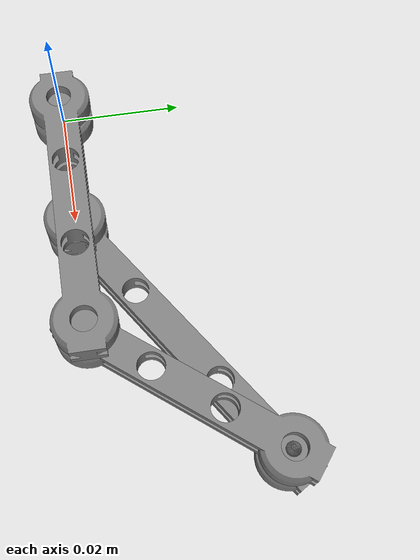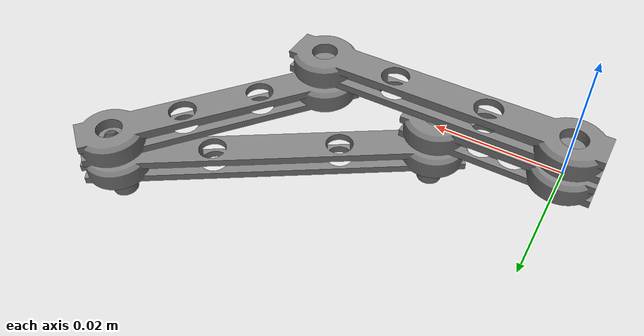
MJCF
<?xml version='1.0' encoding='utf-8'?>
<mujoco model="four_bar_linkage">
  <compiler angle="radian" coordinate="local" />
  <option gravity="0 0 -9.81" />
  <asset>
    <mesh name="mesh_coupler" file="four_bar_linkage_meshes/mesh_coupler.obj" scale="0.001 0.001 0.001" />
    <mesh name="mesh_crank" file="four_bar_linkage_meshes/mesh_crank.obj" scale="0.001 0.001 0.001" />
    <mesh name="mesh_ground_pivot_bolt" file="four_bar_linkage_meshes/mesh_ground_pivot_bolt.obj" scale="0.001 0.001 0.001" />
    <mesh name="mesh_ground_span" file="four_bar_linkage_meshes/mesh_ground_span.obj" scale="0.001 0.001 0.001" />
    <mesh name="mesh_pivot_bolt" file="four_bar_linkage_meshes/mesh_pivot_bolt.obj" scale="0.001 0.001 0.001" />
    <mesh name="mesh_rocker" file="four_bar_linkage_meshes/mesh_rocker.obj" scale="0.001 0.001 0.001" />
  </asset>
  <worldbody>
    <geom name="bolt_a" type="mesh" mesh="mesh_ground_pivot_bolt" density="7850" contype="1" conaffinity="1" pos="0 0 0.005" quat="1 0 0 0" />
    <geom name="bolt_d" type="mesh" mesh="mesh_ground_pivot_bolt" density="7850" contype="1" conaffinity="1" pos="0.04 0 0.005" quat="1 0 0 0" />
    <geom name="ground" type="mesh" mesh="mesh_ground_span" density="7850" contype="1" conaffinity="1" pos="0 0 0" quat="1 0 0 0" />
    <body name="body_crank" pos="0.02 0 0" quat="1 0 0 0">
      <joint name="joint_joint_four_bar_linkage_crank_to_ground_e0a5b0c656ec" type="hinge" pos="-0.02 0 0" axis="0 0 1" />
      <geom name="bolt_b" type="mesh" mesh="mesh_pivot_bolt" density="7850" contype="1" conaffinity="1" pos="0 0 0" quat="1 0 0 0" />
      <geom name="crank" type="mesh" mesh="mesh_crank" density="7850" contype="1" conaffinity="1" pos="-0.02 0 0" quat="1 0 0 0" />
      <body name="body_coupler" pos="0 0 0" quat="0.958514475634 0 0 0.285043856275">
        <joint name="joint_joint_four_bar_linkage_coupler_to_crank_4124f57674a4" type="hinge" pos="0 0 0" axis="0 0 1" />
        <geom name="coupler" type="mesh" mesh="mesh_coupler" density="7850" contype="1" conaffinity="1" pos="0 0 0" quat="1 0 0 0" />
        <site name="closure_b_joint_four_bar_linkage_coupler_to_rocker_51066f5bc660" size="0.0012" type="sphere" pos="0.05 -3.5527136788e-18 0" quat="1 0 0 0" />
      </body>
      <site name="crank_input_axis" size="0.0012" type="sphere" pos="-0.02 0 0" quat="1 0 0 0" />
    </body>
    <body name="body_rocker" pos="0.061875 0.027321866243 0" quat="1 0 0 0">
      <joint name="joint_joint_four_bar_linkage_rocker_to_ground_b8d24aab50f4" type="hinge" pos="-0.021875 -0.027321866243 0" axis="0 0 1" />
      <geom name="bolt_c" type="mesh" mesh="mesh_pivot_bolt" density="7850" contype="1" conaffinity="1" pos="0 0 0" quat="1 0 0 0" />
      <geom name="rocker" type="mesh" mesh="mesh_rocker" density="7850" contype="1" conaffinity="1" pos="-0.021875 -0.027321866243 0" quat="0.901387818866 0 0 0.433012701892" />
      <site name="closure_a_joint_four_bar_linkage_coupler_to_rocker_3179291fc4a4" size="0.0012" type="sphere" pos="0 0 0" quat="0.901387818866 0 0 0.433012701892" />
    </body>
  </worldbody>
  <tendon />
  <equality>
    <connect name="closure_joint_four_bar_linkage_coupler_to_rocker_9692ef4610db" site1="closure_a_joint_four_bar_linkage_coupler_to_rocker_3179291fc4a4" site2="closure_b_joint_four_bar_linkage_coupler_to_rocker_51066f5bc660" />
  </equality>
</mujoco>
